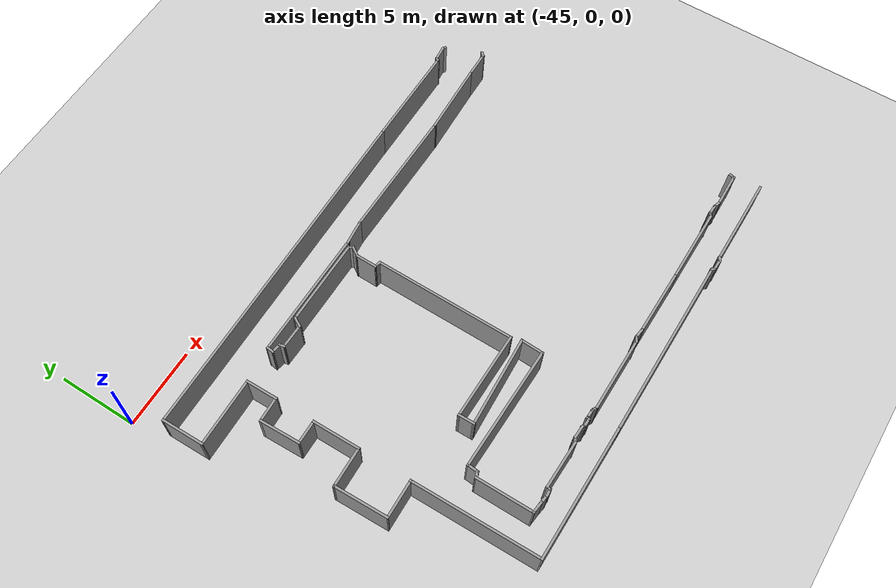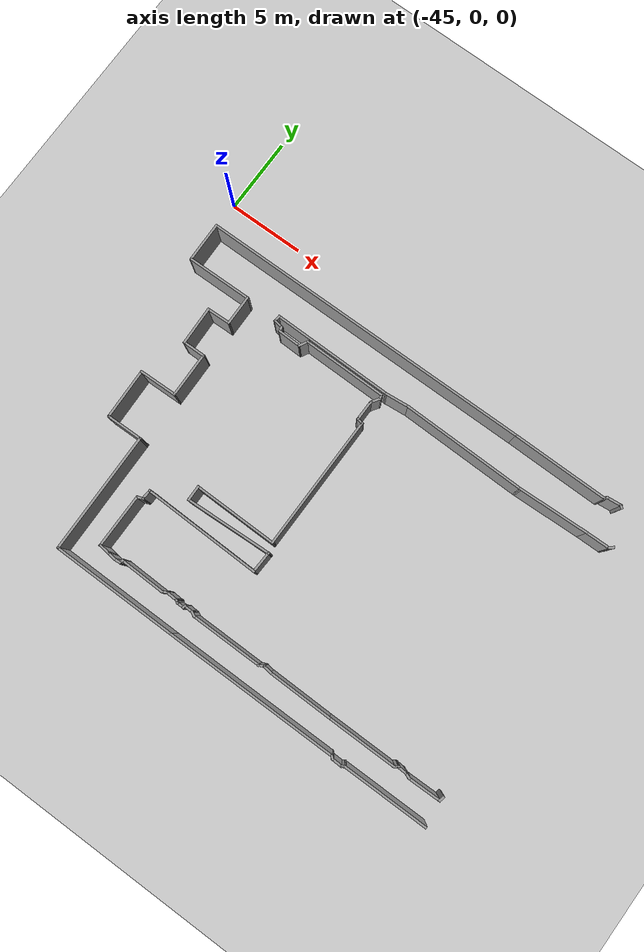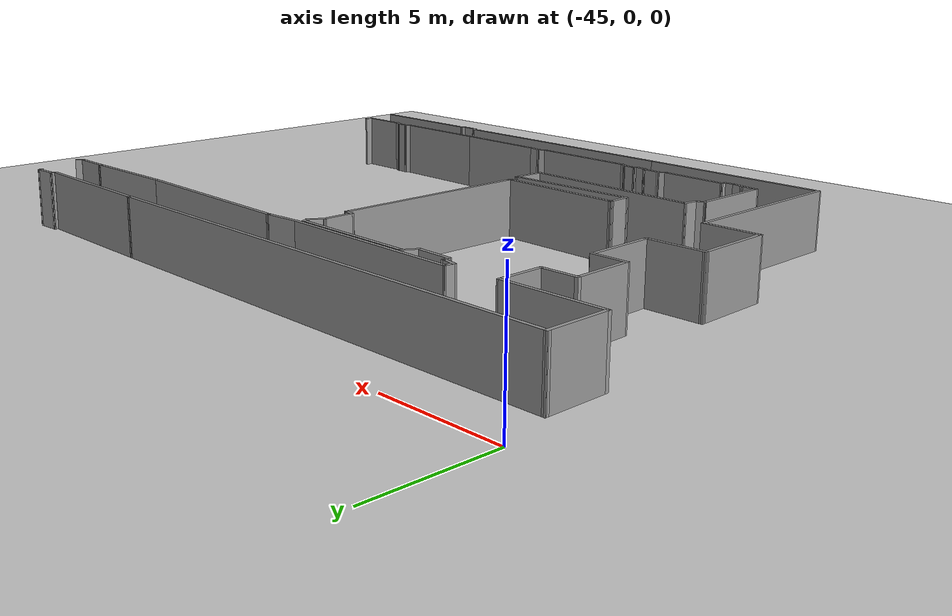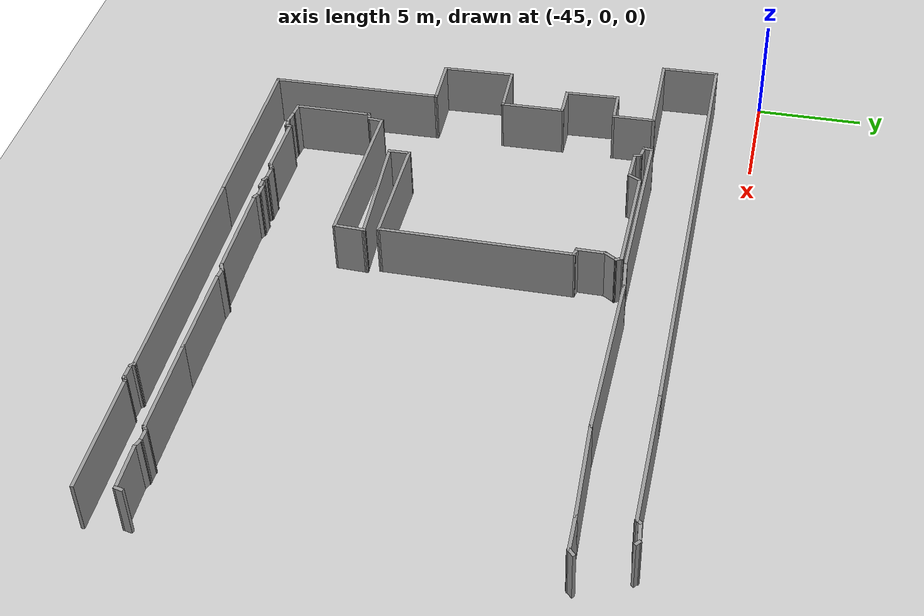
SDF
<sdf version="1.7">
 <world name="default">
  <model name="ground_plane">
   <static>1</static>
   <link name="link">
    <collision name="collision">
     <geometry><plane><normal>0 0 1</normal><size>100 100</size></plane></geometry>
     <surface>
      <contact><collide_bitmask>65535</collide_bitmask></contact>
      <friction><ode><mu>100</mu><mu2>50</mu2></ode></friction>
     </surface>
    </collision>
    <visual name="visual">
     <cast_shadows>0</cast_shadows>
     <geometry><plane><normal>0 0 1</normal><size>100 100</size></plane></geometry>
     <material>
      <script><uri>file://media/materials/scripts/gazebo.material</uri><name>Gazebo/Grey</name></script>
     </material>
    </visual>
   </link>
  </model>
  <model name="EnvDC_1stfloor">
   <pose>-14.254 -7.77363 0 0 0 -0.048671</pose>
   <link name="Wall_104">
    <collision name="Wall_104_Collision">
     <geometry><box><size>0.420217 0.15 2.5</size></box></geometry>
     <pose>0 0 1.25 0 -0 0</pose>
    </collision>
    <visual name="Wall_104_Visual">
     <pose>0 0 1.25 0 -0 0</pose>
     <geometry><box><size>0.420217 0.15 2.5</size></box></geometry>
     <material>
      <script><uri>file://media/materials/scripts/gazebo.material</uri><name>Gazebo/Grey</name></script>
      <ambient>1 1 1 1</ambient>
     </material>
     <meta><layer>0</layer></meta>
    </visual>
    <pose>1.00864 -13.7694 0 0 -0 -1.74203</pose>
   </link>
   <link name="Wall_105">
    <collision name="Wall_105_Collision">
     <geometry><box><size>2.22808 0.15 2.5</size></box></geometry>
     <pose>0 0 1.25 0 -0 0</pose>
    </collision>
    <visual name="Wall_105_Visual">
     <pose>0 0 1.25 0 -0 0</pose>
     <geometry><box><size>2.22808 0.15 2.5</size></box></geometry>
     <material>
      <script><uri>file://media/materials/scripts/gazebo.material</uri><name>Gazebo/Grey</name></script>
      <ambient>1 1 1 1</ambient>
     </material>
     <meta><layer>0</layer></meta>
    </visual>
    <pose>-0.051496 -13.9658 0 0 -0 -3.08063</pose>
   </link>
   <link name="Wall_111">
    <collision name="Wall_111_Collision">
     <geometry><box><size>0.496157 0.15 2.5</size></box></geometry>
     <pose>0 0 1.25 0 -0 0</pose>
    </collision>
    <visual name="Wall_111_Visual">
     <pose>0 0 1.25 0 -0 0</pose>
     <geometry><box><size>0.496157 0.15 2.5</size></box></geometry>
     <material>
      <script><uri>file://media/materials/scripts/gazebo.material</uri><name>Gazebo/Grey</name></script>
      <ambient>1 1 1 1</ambient>
     </material>
     <meta><layer>0</layer></meta>
    </visual>
    <pose>-1.25341 -13.9763 0 0 -0 2.8312</pose>
   </link>
   <link name="Wall_112">
    <collision name="Wall_112_Collision">
     <geometry><box><size>0.682216 0.15 2.5</size></box></geometry>
     <pose>0 0 1.25 0 -0 0</pose>
    </collision>
    <visual name="Wall_112_Visual">
     <pose>0 0 1.25 0 -0 0</pose>
     <geometry><box><size>0.682216 0.15 2.5</size></box></geometry>
     <material>
      <script><uri>file://media/materials/scripts/gazebo.material</uri><name>Gazebo/Grey</name></script>
      <ambient>1 1 1 1</ambient>
     </material>
     <meta><layer>0</layer></meta>
    </visual>
    <pose>-1.68433 -13.9234 0 0 -0 3.14159</pose>
   </link>
   <link name="Wall_113">
    <collision name="Wall_113_Collision">
     <geometry><box><size>0.403477 0.15 2.5</size></box></geometry>
     <pose>0 0 1.25 0 -0 0</pose>
    </collision>
    <visual name="Wall_113_Visual">
     <pose>0 0 1.25 0 -0 0</pose>
     <geometry><box><size>0.403477 0.15 2.5</size></box></geometry>
     <material>
      <script><uri>file://media/materials/scripts/gazebo.material</uri><name>Gazebo/Grey</name></script>
      <ambient>1 1 1 1</ambient>
     </material>
     <meta><layer>0</layer></meta>
    </visual>
    <pose>-2.05615 -13.9933 0 0 -0 -2.55732</pose>
   </link>
   <link name="Wall_114">
    <collision name="Wall_114_Collision">
     <geometry><box><size>4.64567 0.15 2.5</size></box></geometry>
     <pose>0 0 1.25 0 -0 0</pose>
    </collision>
    <visual name="Wall_114_Visual">
     <pose>0 0 1.25 0 -0 0</pose>
     <geometry><box><size>4.64567 0.15 2.5</size></box></geometry>
     <material>
      <script><uri>file://media/materials/scripts/gazebo.material</uri><name>Gazebo/Grey</name></script>
      <ambient>1 1 1 1</ambient>
     </material>
     <meta><layer>0</layer></meta>
    </visual>
    <pose>-4.40738 -14.1701 0 0 -0 -3.09617</pose>
   </link>
   <link name="Wall_116">
    <collision name="Wall_116_Collision">
     <geometry><box><size>4.34413 0.15 2.5</size></box></geometry>
     <pose>0 0 1.25 0 -0 0</pose>
    </collision>
    <visual name="Wall_116_Visual">
     <pose>0 0 1.25 0 -0 0</pose>
     <geometry><box><size>4.34413 0.15 2.5</size></box></geometry>
     <material>
      <script><uri>file://media/materials/scripts/gazebo.material</uri><name>Gazebo/Grey</name></script>
      <ambient>1 1 1 1</ambient>
     </material>
     <meta><layer>0</layer></meta>
    </visual>
    <pose>-8.74854 -14.3495 0 0 -0 -3.10472</pose>
   </link>
   <link name="Wall_117">
    <collision name="Wall_117_Collision">
     <geometry><box><size>0.657664 0.15 2.5</size></box></geometry>
     <pose>0 0 1.25 0 -0 0</pose>
    </collision>
    <visual name="Wall_117_Visual">
     <pose>0 0 1.25 0 -0 0</pose>
     <geometry><box><size>0.657664 0.15 2.5</size></box></geometry>
     <material>
      <script><uri>file://media/materials/scripts/gazebo.material</uri><name>Gazebo/Grey</name></script>
      <ambient>1 1 1 1</ambient>
     </material>
     <meta><layer>0</layer></meta>
    </visual>
    <pose>-11.0971 -14.4057 0 0 -0 3.05845</pose>
   </link>
   <link name="Wall_118">
    <collision name="Wall_118_Collision">
     <geometry><box><size>0.478084 0.15 2.5</size></box></geometry>
     <pose>0 0 1.25 0 -0 0</pose>
    </collision>
    <visual name="Wall_118_Visual">
     <pose>0 0 1.25 0 -0 0</pose>
     <geometry><box><size>0.478084 0.15 2.5</size></box></geometry>
     <material>
      <script><uri>file://media/materials/scripts/gazebo.material</uri><name>Gazebo/Grey</name></script>
      <ambient>1 1 1 1</ambient>
     </material>
     <meta><layer>0</layer></meta>
    </visual>
    <pose>-11.4976 -14.4563 0 0 -0 -2.68944</pose>
   </link>
   <link name="Wall_119">
    <collision name="Wall_119_Collision">
     <geometry><box><size>4.75823 0.15 2.5</size></box></geometry>
     <pose>0 0 1.25 0 -0 0</pose>
    </collision>
    <visual name="Wall_119_Visual">
     <pose>0 0 1.25 0 -0 0</pose>
     <geometry><box><size>4.75823 0.15 2.5</size></box></geometry>
     <material>
      <script><uri>file://media/materials/scripts/gazebo.material</uri><name>Gazebo/Grey</name></script>
      <ambient>1 1 1 1</ambient>
     </material>
     <meta><layer>0</layer></meta>
    </visual>
    <pose>-13.9471 -14.6292 0 0 -0 -3.09767</pose>
   </link>
   <link name="Wall_121">
    <collision name="Wall_121_Collision">
     <geometry><box><size>0.441234 0.15 2.5</size></box></geometry>
     <pose>0 0 1.25 0 -0 0</pose>
    </collision>
    <visual name="Wall_121_Visual">
     <pose>0 0 1.25 0 -0 0</pose>
     <geometry><box><size>0.441234 0.15 2.5</size></box></geometry>
     <material>
      <script><uri>file://media/materials/scripts/gazebo.material</uri><name>Gazebo/Grey</name></script>
      <ambient>1 1 1 1</ambient>
     </material>
     <meta><layer>0</layer></meta>
    </visual>
    <pose>-16.3839 -14.6755 0 0 -0 2.75571</pose>
   </link>
   <link name="Wall_122">
    <collision name="Wall_122_Collision">
     <geometry><box><size>0.664342 0.15 2.5</size></box></geometry>
     <pose>0 0 1.25 0 -0 0</pose>
    </collision>
    <visual name="Wall_122_Visual">
     <pose>0 0 1.25 0 -0 0</pose>
     <geometry><box><size>0.664342 0.15 2.5</size></box></geometry>
     <material>
      <script><uri>file://media/materials/scripts/gazebo.material</uri><name>Gazebo/Grey</name></script>
      <ambient>1 1 1 1</ambient>
     </material>
     <meta><layer>0</layer></meta>
    </visual>
    <pose>-16.776 -14.6207 0 0 -0 3.14159</pose>
   </link>
   <link name="Wall_123">
    <collision name="Wall_123_Collision">
     <geometry><box><size>0.272769 0.15 2.5</size></box></geometry>
     <pose>0 0 1.25 0 -0 0</pose>
    </collision>
    <visual name="Wall_123_Visual">
     <pose>0 0 1.25 0 -0 0</pose>
     <geometry><box><size>0.272769 0.15 2.5</size></box></geometry>
     <material>
      <script><uri>file://media/materials/scripts/gazebo.material</uri><name>Gazebo/Grey</name></script>
      <ambient>1 1 1 1</ambient>
     </material>
     <meta><layer>0</layer></meta>
    </visual>
    <pose>-17.05 -14.6798 0 0 -0 -1.8491</pose>
   </link>
   <link name="Wall_124">
    <collision name="Wall_124_Collision">
     <geometry><box><size>0.58878 0.15 2.5</size></box></geometry>
     <pose>0 0 1.25 0 -0 0</pose>
    </collision>
    <visual name="Wall_124_Visual">
     <pose>0 0 1.25 0 -0 0</pose>
     <geometry><box><size>0.58878 0.15 2.5</size></box></geometry>
     <material>
      <script><uri>file://media/materials/scripts/gazebo.material</uri><name>Gazebo/Grey</name></script>
      <ambient>1 1 1 1</ambient>
     </material>
     <meta><layer>0</layer></meta>
    </visual>
    <pose>-17.2861 -14.743 0 0 -0 -3.12236</pose>
   </link>
   <link name="Wall_125">
    <collision name="Wall_125_Collision">
     <geometry><box><size>0.309092 0.15 2.5</size></box></geometry>
     <pose>0 0 1.25 0 -0 0</pose>
    </collision>
    <visual name="Wall_125_Visual">
     <pose>0 0 1.25 0 -0 0</pose>
     <geometry><box><size>0.309092 0.15 2.5</size></box></geometry>
     <material>
      <script><uri>file://media/materials/scripts/gazebo.material</uri><name>Gazebo/Grey</name></script>
      <ambient>1 1 1 1</ambient>
     </material>
     <meta><layer>0</layer></meta>
    </visual>
    <pose>-17.5728 -14.7051 0 0 -0 2.58299</pose>
   </link>
   <link name="Wall_126">
    <collision name="Wall_126_Collision">
     <geometry><box><size>0.875138 0.15 2.5</size></box></geometry>
     <pose>0 0 1.25 0 -0 0</pose>
    </collision>
    <visual name="Wall_126_Visual">
     <pose>0 0 1.25 0 -0 0</pose>
     <geometry><box><size>0.875138 0.15 2.5</size></box></geometry>
     <material>
      <script><uri>file://media/materials/scripts/gazebo.material</uri><name>Gazebo/Grey</name></script>
      <ambient>1 1 1 1</ambient>
     </material>
     <meta><layer>0</layer></meta>
    </visual>
    <pose>-18.0028 -14.6629 0 0 -0 3.14159</pose>
   </link>
   <link name="Wall_127">
    <collision name="Wall_127_Collision">
     <geometry><box><size>0.449419 0.15 2.5</size></box></geometry>
     <pose>0 0 1.25 0 -0 0</pose>
    </collision>
    <visual name="Wall_127_Visual">
     <pose>0 0 1.25 0 -0 0</pose>
     <geometry><box><size>0.449419 0.15 2.5</size></box></geometry>
     <material>
      <script><uri>file://media/materials/scripts/gazebo.material</uri><name>Gazebo/Grey</name></script>
      <ambient>1 1 1 1</ambient>
     </material>
     <meta><layer>0</layer></meta>
    </visual>
    <pose>-18.4919 -14.743 0 0 -0 -2.57702</pose>
   </link>
   <link name="Wall_128">
    <collision name="Wall_128_Collision">
     <geometry><box><size>3.06046 0.15 2.5</size></box></geometry>
     <pose>0 0 1.25 0 -0 0</pose>
    </collision>
    <visual name="Wall_128_Visual">
     <pose>0 0 1.25 0 -0 0</pose>
     <geometry><box><size>3.06046 0.15 2.5</size></box></geometry>
     <material>
      <script><uri>file://media/materials/scripts/gazebo.material</uri><name>Gazebo/Grey</name></script>
      <ambient>1 1 1 1</ambient>
     </material>
     <meta><layer>0</layer></meta>
    </visual>
    <pose>-20.0728 -14.8568 0 0 -0 -3.11841</pose>
   </link>
   <link name="Wall_129">
    <collision name="Wall_129_Collision">
     <geometry><box><size>0.342276 0.15 2.5</size></box></geometry>
     <pose>0 0 1.25 0 -0 0</pose>
    </collision>
    <visual name="Wall_129_Visual">
     <pose>0 0 1.25 0 -0 0</pose>
     <geometry><box><size>0.342276 0.15 2.5</size></box></geometry>
     <material>
      <script><uri>file://media/materials/scripts/gazebo.material</uri><name>Gazebo/Grey</name></script>
      <ambient>1 1 1 1</ambient>
     </material>
     <meta><layer>0</layer></meta>
    </visual>
    <pose>-21.5526 -14.9833 0 0 -0 -1.83705</pose>
   </link>
   <link name="Wall_130">
    <collision name="Wall_130_Collision">
     <geometry><box><size>0.532791 0.15 2.5</size></box></geometry>
     <pose>0 0 1.25 0 -0 0</pose>
    </collision>
    <visual name="Wall_130_Visual">
     <pose>0 0 1.25 0 -0 0</pose>
     <geometry><box><size>0.532791 0.15 2.5</size></box></geometry>
     <material>
      <script><uri>file://media/materials/scripts/gazebo.material</uri><name>Gazebo/Grey</name></script>
      <ambient>1 1 1 1</ambient>
     </material>
     <meta><layer>0</layer></meta>
    </visual>
    <pose>-21.7676 -15.1014 0 0 -0 -3.00904</pose>
   </link>
   <link name="Wall_131">
    <collision name="Wall_131_Collision">
     <geometry><box><size>0.634225 0.15 2.5</size></box></geometry>
     <pose>0 0 1.25 0 -0 0</pose>
    </collision>
    <visual name="Wall_131_Visual">
     <pose>0 0 1.25 0 -0 0</pose>
     <geometry><box><size>0.634225 0.15 2.5</size></box></geometry>
     <material>
      <script><uri>file://media/materials/scripts/gazebo.material</uri><name>Gazebo/Grey</name></script>
      <ambient>1 1 1 1</ambient>
     </material>
     <meta><layer>0</layer></meta>
    </visual>
    <pose>-22.1977 -15.1014 0 0 -0 3.03672</pose>
   </link>
   <link name="Wall_132">
    <collision name="Wall_132_Collision">
     <geometry><box><size>0.817448 0.15 2.5</size></box></geometry>
     <pose>0 0 1.25 0 -0 0</pose>
    </collision>
    <visual name="Wall_132_Visual">
     <pose>0 0 1.25 0 -0 0</pose>
     <geometry><box><size>0.817448 0.15 2.5</size></box></geometry>
     <material>
      <script><uri>file://media/materials/scripts/gazebo.material</uri><name>Gazebo/Grey</name></script>
      <ambient>1 1 1 1</ambient>
     </material>
     <meta><layer>0</layer></meta>
    </visual>
    <pose>-22.771 -15.055 0 0 -0 3.07839</pose>
   </link>
   <link name="Wall_133">
    <collision name="Wall_133_Collision">
     <geometry><box><size>3.62843 0.15 2.5</size></box></geometry>
     <pose>0 0 1.25 0 -0 0</pose>
    </collision>
    <visual name="Wall_133_Visual">
     <pose>0 0 1.25 0 -0 0</pose>
     <geometry><box><size>3.62843 0.15 2.5</size></box></geometry>
     <material>
      <script><uri>file://media/materials/scripts/gazebo.material</uri><name>Gazebo/Grey</name></script>
      <ambient>1 1 1 1</ambient>
     </material>
     <meta><layer>0</layer></meta>
    </visual>
    <pose>-23.1926 -13.2969 0 0 -0 1.62172</pose>
   </link>
   <link name="Wall_138">
    <collision name="Wall_138_Collision">
     <geometry><box><size>0.501012 0.15 2.5</size></box></geometry>
     <pose>0 0 1.25 0 -0 0</pose>
    </collision>
    <visual name="Wall_138_Visual">
     <pose>0 0 1.25 0 -0 0</pose>
     <geometry><box><size>0.501012 0.15 2.5</size></box></geometry>
     <material>
      <script><uri>file://media/materials/scripts/gazebo.material</uri><name>Gazebo/Grey</name></script>
      <ambient>1 1 1 1</ambient>
     </material>
     <meta><layer>0</layer></meta>
    </visual>
    <pose>-23.1209 -11.4883 0 0 -0 0.420663</pose>
   </link>
   <link name="Wall_139">
    <collision name="Wall_139_Collision">
     <geometry><box><size>0.748898 0.15 2.5</size></box></geometry>
     <pose>0 0 1.25 0 -0 0</pose>
    </collision>
    <visual name="Wall_139_Visual">
     <pose>0 0 1.25 0 -0 0</pose>
     <geometry><box><size>0.748898 0.15 2.5</size></box></geometry>
     <material>
      <script><uri>file://media/materials/scripts/gazebo.material</uri><name>Gazebo/Grey</name></script>
      <ambient>1 1 1 1</ambient>
     </material>
     <meta><layer>0</layer></meta>
    </visual>
    <pose>-22.9523 -11.1173 0 0 -0 1.54263</pose>
   </link>
   <link name="Wall_140">
    <collision name="Wall_140_Collision">
     <geometry><box><size>7.85115 0.15 2.5</size></box></geometry>
     <pose>0 0 1.25 0 -0 0</pose>
    </collision>
    <visual name="Wall_140_Visual">
     <pose>0 0 1.25 0 -0 0</pose>
     <geometry><box><size>7.85115 0.15 2.5</size></box></geometry>
     <material>
      <script><uri>file://media/materials/scripts/gazebo.material</uri><name>Gazebo/Grey</name></script>
      <ambient>1 1 1 1</ambient>
     </material>
     <meta><layer>0</layer></meta>
    </visual>
    <pose>-19.0947 -10.7126 0 0 -0 0.027375</pose>
   </link>
   <link name="Wall_141">
    <collision name="Wall_141_Collision">
     <geometry><box><size>1.49069 0.15 2.5</size></box></geometry>
     <pose>0 0 1.25 0 -0 0</pose>
    </collision>
    <visual name="Wall_141_Visual">
     <pose>0 0 1.25 0 -0 0</pose>
     <geometry><box><size>1.49069 0.15 2.5</size></box></geometry>
     <material>
      <script><uri>file://media/materials/scripts/gazebo.material</uri><name>Gazebo/Grey</name></script>
      <ambient>1 1 1 1</ambient>
     </material>
     <meta><layer>0</layer></meta>
    </visual>
    <pose>-15.2498 -9.93685 0 0 -0 1.57709</pose>
   </link>
   <link name="Wall_142">
    <collision name="Wall_142_Collision">
     <geometry><box><size>5.7647 0.15 2.5</size></box></geometry>
     <pose>0 0 1.25 0 -0 0</pose>
    </collision>
    <visual name="Wall_142_Visual">
     <pose>0 0 1.25 0 -0 0</pose>
     <geometry><box><size>5.7647 0.15 2.5</size></box></geometry>
     <material>
      <script><uri>file://media/materials/scripts/gazebo.material</uri><name>Gazebo/Grey</name></script>
      <ambient>1 1 1 1</ambient>
     </material>
     <meta><layer>0</layer></meta>
    </visual>
    <pose>-18.0492 -9.52791 0 0 -0 -3.04835</pose>
   </link>
   <link name="Wall_143">
    <collision name="Wall_143_Collision">
     <geometry><box><size>1.07995 0.15 2.5</size></box></geometry>
     <pose>0 0 1.25 0 -0 0</pose>
    </collision>
    <visual name="Wall_143_Visual">
     <pose>0 0 1.25 0 -0 0</pose>
     <geometry><box><size>1.07995 0.15 2.5</size></box></geometry>
     <material>
      <script><uri>file://media/materials/scripts/gazebo.material</uri><name>Gazebo/Grey</name></script>
      <ambient>1 1 1 1</ambient>
     </material>
     <meta><layer>0</layer></meta>
    </visual>
    <pose>-20.8739 -9.32554 0 0 -0 1.63435</pose>
   </link>
   <link name="Wall_144">
    <collision name="Wall_144_Collision">
     <geometry><box><size>5.5923 0.15 2.5</size></box></geometry>
     <pose>0 0 1.25 0 -0 0</pose>
    </collision>
    <visual name="Wall_144_Visual">
     <pose>0 0 1.25 0 -0 0</pose>
     <geometry><box><size>5.5923 0.15 2.5</size></box></geometry>
     <material>
      <script><uri>file://media/materials/scripts/gazebo.material</uri><name>Gazebo/Grey</name></script>
      <ambient>1 1 1 1</ambient>
     </material>
     <meta><layer>0</layer></meta>
    </visual>
    <pose>-18.1841 -8.76061 0 0 -0 0.037192</pose>
   </link>
   <link name="Wall_146">
    <collision name="Wall_146_Collision">
     <geometry><box><size>8.90349 0.15 2.5</size></box></geometry>
     <pose>0 0 1.25 0 -0 0</pose>
    </collision>
    <visual name="Wall_146_Visual">
     <pose>0 0 1.25 0 -0 0</pose>
     <geometry><box><size>8.90349 0.15 2.5</size></box></geometry>
     <material>
      <script><uri>file://media/materials/scripts/gazebo.material</uri><name>Gazebo/Grey</name></script>
      <ambient>1 1 1 1</ambient>
     </material>
     <meta><layer>0</layer></meta>
    </visual>
    <pose>-15.6523 -4.2867 0 0 -0 1.61364</pose>
   </link>
   <link name="Wall_147">
    <collision name="Wall_147_Collision">
     <geometry><box><size>0.505025 0.15 2.5</size></box></geometry>
     <pose>0 0 1.25 0 -0 0</pose>
    </collision>
    <visual name="Wall_147_Visual">
     <pose>0 0 1.25 0 -0 0</pose>
     <geometry><box><size>0.505025 0.15 2.5</size></box></geometry>
     <material>
      <script><uri>file://media/materials/scripts/gazebo.material</uri><name>Gazebo/Grey</name></script>
      <ambient>1 1 1 1</ambient>
     </material>
     <meta><layer>0</layer></meta>
    </visual>
    <pose>-16.015 0.114301 0 0 -0 2.98168</pose>
   </link>
   <link name="Wall_148">
    <collision name="Wall_148_Collision">
     <geometry><box><size>1.40581 0.15 2.5</size></box></geometry>
     <pose>0 0 1.25 0 -0 0</pose>
    </collision>
    <visual name="Wall_148_Visual">
     <pose>0 0 1.25 0 -0 0</pose>
     <geometry><box><size>1.40581 0.15 2.5</size></box></geometry>
     <material>
      <script><uri>file://media/materials/scripts/gazebo.material</uri><name>Gazebo/Grey</name></script>
      <ambient>1 1 1 1</ambient>
     </material>
     <meta><layer>0</layer></meta>
    </visual>
    <pose>-16.2128 0.770066 0 0 -0 1.60682</pose>
   </link>
   <link name="Wall_149">
    <collision name="Wall_149_Collision">
     <geometry><box><size>0.753061 0.15 2.5</size></box></geometry>
     <pose>0 0 1.25 0 -0 0</pose>
    </collision>
    <visual name="Wall_149_Visual">
     <pose>0 0 1.25 0 -0 0</pose>
     <geometry><box><size>0.753061 0.15 2.5</size></box></geometry>
     <material>
      <script><uri>file://media/materials/scripts/gazebo.material</uri><name>Gazebo/Grey</name></script>
      <ambient>1 1 1 1</ambient>
     </material>
     <meta><layer>0</layer></meta>
    </visual>
    <pose>-16.0828 1.65761 0 0 -0 1.04002</pose>
   </link>
   <link name="Wall_150">
    <collision name="Wall_150_Collision">
     <geometry><box><size>0.402816 0.15 2.5</size></box></geometry>
     <pose>0 0 1.25 0 -0 0</pose>
    </collision>
    <visual name="Wall_150_Visual">
     <pose>0 0 1.25 0 -0 0</pose>
     <geometry><box><size>0.402816 0.15 2.5</size></box></geometry>
     <material>
      <script><uri>file://media/materials/scripts/gazebo.material</uri><name>Gazebo/Grey</name></script>
      <ambient>1 1 1 1</ambient>
     </material>
     <meta><layer>0</layer></meta>
    </visual>
    <pose>-15.9867 2.03072 0 0 -0 2.03444</pose>
   </link>
   <link name="Wall_151">
    <collision name="Wall_151_Collision">
     <geometry><box><size>5.54784 0.15 2.5</size></box></geometry>
     <pose>0 0 1.25 0 -0 0</pose>
    </collision>
    <visual name="Wall_151_Visual">
     <pose>0 0 1.25 0 -0 0</pose>
     <geometry><box><size>5.54784 0.15 2.5</size></box></geometry>
     <material>
      <script><uri>file://media/materials/scripts/gazebo.material</uri><name>Gazebo/Grey</name></script>
      <ambient>1 1 1 1</ambient>
     </material>
     <meta><layer>0</layer></meta>
    </visual>
    <pose>-18.7398 2.03072 0 0 -0 -3.09969</pose>
   </link>
   <link name="Wall_152">
    <collision name="Wall_152_Collision">
     <geometry><box><size>0.731478 0.15 2.5</size></box></geometry>
     <pose>0 0 1.25 0 -0 0</pose>
    </collision>
    <visual name="Wall_152_Visual">
     <pose>0 0 1.25 0 -0 0</pose>
     <geometry><box><size>0.731478 0.15 2.5</size></box></geometry>
     <material>
      <script><uri>file://media/materials/scripts/gazebo.material</uri><name>Gazebo/Grey</name></script>
      <ambient>1 1 1 1</ambient>
     </material>
     <meta><layer>0</layer></meta>
    </visual>
    <pose>-21.5664 1.65761 0 0 -0 -2.03444</pose>
   </link>
   <link name="Wall_153">
    <collision name="Wall_153_Collision">
     <geometry><box><size>1.60869 0.15 2.5</size></box></geometry>
     <pose>0 0 1.25 0 -0 0</pose>
    </collision>
    <visual name="Wall_153_Visual">
     <pose>0 0 1.25 0 -0 0</pose>
     <geometry><box><size>1.60869 0.15 2.5</size></box></geometry>
     <material>
      <script><uri>file://media/materials/scripts/gazebo.material</uri><name>Gazebo/Grey</name></script>
      <ambient>1 1 1 1</ambient>
     </material>
     <meta><layer>0</layer></meta>
    </visual>
    <pose>-22.4256 1.38061 0 0 -0 -3.11834</pose>
   </link>
   <link name="Wall_154">
    <collision name="Wall_154_Collision">
     <geometry><box><size>0.411026 0.15 2.5</size></box></geometry>
     <pose>0 0 1.25 0 -0 0</pose>
    </collision>
    <visual name="Wall_154_Visual">
     <pose>0 0 1.25 0 -0 0</pose>
     <geometry><box><size>0.411026 0.15 2.5</size></box></geometry>
     <material>
      <script><uri>file://media/materials/scripts/gazebo.material</uri><name>Gazebo/Grey</name></script>
      <ambient>1 1 1 1</ambient>
     </material>
     <meta><layer>0</layer></meta>
    </visual>
    <pose>-23.1945 1.48802 0 0 -0 1.87885</pose>
   </link>
   <link name="Wall_155">
    <collision name="Wall_155_Collision">
     <geometry><box><size>0.696925 0.15 2.5</size></box></geometry>
     <pose>0 0 1.25 0 -0 0</pose>
    </collision>
    <visual name="Wall_155_Visual">
     <pose>0 0 1.25 0 -0 0</pose>
     <geometry><box><size>0.696925 0.15 2.5</size></box></geometry>
     <material>
      <script><uri>file://media/materials/scripts/gazebo.material</uri><name>Gazebo/Grey</name></script>
      <ambient>1 1 1 1</ambient>
     </material>
     <meta><layer>0</layer></meta>
    </visual>
    <pose>-23.5054 1.6463 0 0 -0 3.01724</pose>
   </link>
   <link name="Wall_156">
    <collision name="Wall_156_Collision">
     <geometry><box><size>0.512507 0.15 2.5</size></box></geometry>
     <pose>0 0 1.25 0 -0 0</pose>
    </collision>
    <visual name="Wall_156_Visual">
     <pose>0 0 1.25 0 -0 0</pose>
     <geometry><box><size>0.512507 0.15 2.5</size></box></geometry>
     <material>
      <script><uri>file://media/materials/scripts/gazebo.material</uri><name>Gazebo/Grey</name></script>
      <ambient>1 1 1 1</ambient>
     </material>
     <meta><layer>0</layer></meta>
    </visual>
    <pose>-23.7654 1.86112 0 0 -0 1.50838</pose>
   </link>
   <link name="Wall_157">
    <collision name="Wall_157_Collision">
     <geometry><box><size>8.07119 0.15 2.5</size></box></geometry>
     <pose>0 0 1.25 0 -0 0</pose>
    </collision>
    <visual name="Wall_157_Visual">
     <pose>0 0 1.25 0 -0 0</pose>
     <geometry><box><size>8.07119 0.15 2.5</size></box></geometry>
     <material>
      <script><uri>file://media/materials/scripts/gazebo.material</uri><name>Gazebo/Grey</name></script>
      <ambient>1 1 1 1</ambient>
     </material>
     <meta><layer>0</layer></meta>
    </visual>
    <pose>-19.7969 2.20596 0 0 -0 0.041405</pose>
   </link>
   <link name="Wall_158">
    <collision name="Wall_158_Collision">
     <geometry><box><size>1.64662 0.15 2.5</size></box></geometry>
     <pose>0 0 1.25 0 -0 0</pose>
    </collision>
    <visual name="Wall_158_Visual">
     <pose>0 0 1.25 0 -0 0</pose>
     <geometry><box><size>1.64662 0.15 2.5</size></box></geometry>
     <material>
      <script><uri>file://media/materials/scripts/gazebo.material</uri><name>Gazebo/Grey</name></script>
      <ambient>1 1 1 1</ambient>
     </material>
     <meta><layer>0</layer></meta>
    </visual>
    <pose>-15.0992 2.47732 0 0 -0 0.144034</pose>
   </link>
   <link name="Wall_159">
    <collision name="Wall_159_Collision">
     <geometry><box><size>8.29544 0.15 2.5</size></box></geometry>
     <pose>0 0 1.25 0 -0 0</pose>
    </collision>
    <visual name="Wall_159_Visual">
     <pose>0 0 1.25 0 -0 0</pose>
     <geometry><box><size>8.29544 0.15 2.5</size></box></geometry>
     <material>
      <script><uri>file://media/materials/scripts/gazebo.material</uri><name>Gazebo/Grey</name></script>
      <ambient>1 1 1 1</ambient>
     </material>
     <meta><layer>0</layer></meta>
    </visual>
    <pose>-10.2883 2.72606 0 0 -0 0.034708</pose>
   </link>
   <link name="Wall_160">
    <collision name="Wall_160_Collision">
     <geometry><box><size>4.67756 0.15 2.5</size></box></geometry>
     <pose>0 0 1.25 0 -0 0</pose>
    </collision>
    <visual name="Wall_160_Visual">
     <pose>0 0 1.25 0 -0 0</pose>
     <geometry><box><size>4.67756 0.15 2.5</size></box></geometry>
     <material>
      <script><uri>file://media/materials/scripts/gazebo.material</uri><name>Gazebo/Grey</name></script>
      <ambient>1 1 1 1</ambient>
     </material>
     <meta><layer>0</layer></meta>
    </visual>
    <pose>-3.96247 3.05959 0 0 -0 0.085008</pose>
   </link>
   <link name="Wall_161">
    <collision name="Wall_161_Collision">
     <geometry><box><size>1.72564 0.15 2.5</size></box></geometry>
     <pose>0 0 1.25 0 -0 0</pose>
    </collision>
    <visual name="Wall_161_Visual">
     <pose>0 0 1.25 0 -0 0</pose>
     <geometry><box><size>1.72564 0.15 2.5</size></box></geometry>
     <material>
      <script><uri>file://media/materials/scripts/gazebo.material</uri><name>Gazebo/Grey</name></script>
      <ambient>1 1 1 1</ambient>
     </material>
     <meta><layer>0</layer></meta>
    </visual>
    <pose>-0.921076 3.30268 0 0 -0 0.064658</pose>
   </link>
   <link name="Wall_162">
    <collision name="Wall_162_Collision">
     <geometry><box><size>0.413948 0.15 2.5</size></box></geometry>
     <pose>0 0 1.25 0 -0 0</pose>
    </collision>
    <visual name="Wall_162_Visual">
     <pose>0 0 1.25 0 -0 0</pose>
     <geometry><box><size>0.413948 0.15 2.5</size></box></geometry>
     <material>
      <script><uri>file://media/materials/scripts/gazebo.material</uri><name>Gazebo/Grey</name></script>
      <ambient>1 1 1 1</ambient>
     </material>
     <meta><layer>0</layer></meta>
    </visual>
    <pose>-0.044838 3.44966 0 0 -0 0.815692</pose>
   </link>
   <link name="Wall_50">
    <collision name="Wall_50_Collision">
     <geometry><box><size>5.70656 0.15 2.5</size></box></geometry>
     <pose>0 0 1.25 0 -0 0</pose>
    </collision>
    <visual name="Wall_50_Visual">
     <pose>0 0 1.25 0 -0 0</pose>
     <geometry><box><size>5.70656 0.15 2.5</size></box></geometry>
     <material>
      <script><uri>file://media/materials/scripts/gazebo.material</uri><name>Gazebo/Grey</name></script>
      <ambient>1 1 1 1</ambient>
     </material>
     <meta><layer>0</layer></meta>
    </visual>
    <pose>-1.51341 -15.6608 0 0 -0 -3.09298</pose>
   </link>
   <link name="Wall_51">
    <collision name="Wall_51_Collision">
     <geometry><box><size>0.352485 0.15 2.5</size></box></geometry>
     <pose>0 0 1.25 0 -0 0</pose>
    </collision>
    <visual name="Wall_51_Visual">
     <pose>0 0 1.25 0 -0 0</pose>
     <geometry><box><size>0.352485 0.15 2.5</size></box></geometry>
     <material>
      <script><uri>file://media/materials/scripts/gazebo.material</uri><name>Gazebo/Grey</name></script>
      <ambient>1 1 1 1</ambient>
     </material>
     <meta><layer>0</layer></meta>
    </visual>
    <pose>-4.37341 -15.8508 0 0 -0 -2.56729</pose>
   </link>
   <link name="Wall_52">
    <collision name="Wall_52_Collision">
     <geometry><box><size>0.790078 0.15 2.5</size></box></geometry>
     <pose>0 0 1.25 0 -0 0</pose>
    </collision>
    <visual name="Wall_52_Visual">
     <pose>0 0 1.25 0 -0 0</pose>
     <geometry><box><size>0.790078 0.15 2.5</size></box></geometry>
     <material>
      <script><uri>file://media/materials/scripts/gazebo.material</uri><name>Gazebo/Grey</name></script>
      <ambient>1 1 1 1</ambient>
     </material>
     <meta><layer>0</layer></meta>
    </visual>
    <pose>-4.77841 -15.9108 0 0 -0 -3.12597</pose>
   </link>
   <link name="Wall_53">
    <collision name="Wall_53_Collision">
     <geometry><box><size>0.320294 0.15 2.5</size></box></geometry>
     <pose>0 0 1.25 0 -0 0</pose>
    </collision>
    <visual name="Wall_53_Visual">
     <pose>0 0 1.25 0 -0 0</pose>
     <geometry><box><size>0.320294 0.15 2.5</size></box></geometry>
     <material>
      <script><uri>file://media/materials/scripts/gazebo.material</uri><name>Gazebo/Grey</name></script>
      <ambient>1 1 1 1</ambient>
     </material>
     <meta><layer>0</layer></meta>
    </visual>
    <pose>-5.16341 -15.8608 0 0 -0 2.43934</pose>
   </link>
   <link name="Wall_54">
    <collision name="Wall_54_Collision">
     <geometry><box><size>11.5528 0.15 2.5</size></box></geometry>
     <pose>0 0 1.25 0 -0 0</pose>
    </collision>
    <visual name="Wall_54_Visual">
     <pose>0 0 1.25 0 -0 0</pose>
     <geometry><box><size>11.5528 0.15 2.5</size></box></geometry>
     <material>
      <script><uri>file://media/materials/scripts/gazebo.material</uri><name>Gazebo/Grey</name></script>
      <ambient>1 1 1 1</ambient>
     </material>
     <meta><layer>0</layer></meta>
    </visual>
    <pose>-10.9234 -16.0708 0 0 -0 -3.09509</pose>
   </link>
   <link name="Wall_57">
    <collision name="Wall_57_Collision">
     <geometry><box><size>8.44739 0.15 2.5</size></box></geometry>
     <pose>0 0 1.25 0 -0 0</pose>
    </collision>
    <visual name="Wall_57_Visual">
     <pose>0 0 1.25 0 -0 0</pose>
     <geometry><box><size>8.44739 0.15 2.5</size></box></geometry>
     <material>
      <script><uri>file://media/materials/scripts/gazebo.material</uri><name>Gazebo/Grey</name></script>
      <ambient>1 1 1 1</ambient>
     </material>
     <meta><layer>0</layer></meta>
    </visual>
    <pose>-20.7634 -16.5108 0 0 -0 -3.0994</pose>
   </link>
   <link name="Wall_58">
    <collision name="Wall_58_Collision">
     <geometry><box><size>8.02464 0.15 2.5</size></box></geometry>
     <pose>0 0 1.25 0 -0 0</pose>
    </collision>
    <visual name="Wall_58_Visual">
     <pose>0 0 1.25 0 -0 0</pose>
     <geometry><box><size>8.02464 0.15 2.5</size></box></geometry>
     <material>
      <script><uri>file://media/materials/scripts/gazebo.material</uri><name>Gazebo/Grey</name></script>
      <ambient>1 1 1 1</ambient>
     </material>
     <meta><layer>0</layer></meta>
    </visual>
    <pose>-25.1534 -12.7558 0 0 -0 1.63306</pose>
   </link>
   <link name="Wall_60">
    <collision name="Wall_60_Collision">
     <geometry><box><size>2.45489 0.15 2.5</size></box></geometry>
     <pose>0 0 1.25 0 -0 0</pose>
    </collision>
    <visual name="Wall_60_Visual">
     <pose>0 0 1.25 0 -0 0</pose>
     <geometry><box><size>2.45489 0.15 2.5</size></box></geometry>
     <material>
      <script><uri>file://media/materials/scripts/gazebo.material</uri><name>Gazebo/Grey</name></script>
      <ambient>1 1 1 1</ambient>
     </material>
     <meta><layer>0</layer></meta>
    </visual>
    <pose>-26.5484 -8.90078 0 0 -0 -3.07647</pose>
   </link>
   <link name="Wall_61">
    <collision name="Wall_61_Collision">
     <geometry><box><size>3.42954 0.15 2.5</size></box></geometry>
     <pose>0 0 1.25 0 -0 0</pose>
    </collision>
    <visual name="Wall_61_Visual">
     <pose>0 0 1.25 0 -0 0</pose>
     <geometry><box><size>3.42954 0.15 2.5</size></box></geometry>
     <material>
      <script><uri>file://media/materials/scripts/gazebo.material</uri><name>Gazebo/Grey</name></script>
      <ambient>1 1 1 1</ambient>
     </material>
     <meta><layer>0</layer></meta>
    </visual>
    <pose>-27.8234 -7.34078 0 0 -0 1.6471</pose>
   </link>
   <link name="Wall_62">
    <collision name="Wall_62_Collision">
     <geometry><box><size>2.55601 0.15 2.5</size></box></geometry>
     <pose>0 0 1.25 0 -0 0</pose>
    </collision>
    <visual name="Wall_62_Visual">
     <pose>0 0 1.25 0 -0 0</pose>
     <geometry><box><size>2.55601 0.15 2.5</size></box></geometry>
     <material>
      <script><uri>file://media/materials/scripts/gazebo.material</uri><name>Gazebo/Grey</name></script>
      <ambient>1 1 1 1</ambient>
     </material>
     <meta><layer>0</layer></meta>
    </visual>
    <pose>-26.7484 -5.62078 0 0 -0 0.070715</pose>
   </link>
   <link name="Wall_63">
    <collision name="Wall_63_Collision">
     <geometry><box><size>3.03501 0.15 2.5</size></box></geometry>
     <pose>0 0 1.25 0 -0 0</pose>
    </collision>
    <visual name="Wall_63_Visual">
     <pose>0 0 1.25 0 -0 0</pose>
     <geometry><box><size>3.03501 0.15 2.5</size></box></geometry>
     <material>
      <script><uri>file://media/materials/scripts/gazebo.material</uri><name>Gazebo/Grey</name></script>
      <ambient>1 1 1 1</ambient>
     </material>
     <meta><layer>0</layer></meta>
    </visual>
    <pose>-25.6384 -4.09578 0 0 -0 1.63322</pose>
   </link>
   <link name="Wall_64">
    <collision name="Wall_64_Collision">
     <geometry><box><size>1.55228 0.15 2.5</size></box></geometry>
     <pose>0 0 1.25 0 -0 0</pose>
    </collision>
    <visual name="Wall_64_Visual">
     <pose>0 0 1.25 0 -0 0</pose>
     <geometry><box><size>1.55228 0.15 2.5</size></box></geometry>
     <material>
      <script><uri>file://media/materials/scripts/gazebo.material</uri><name>Gazebo/Grey</name></script>
      <ambient>1 1 1 1</ambient>
     </material>
     <meta><layer>0</layer></meta>
    </visual>
    <pose>-26.4284 -2.69578 0 0 -0 -3.08451</pose>
   </link>
   <link name="Wall_65">
    <collision name="Wall_65_Collision">
     <geometry><box><size>2.60898 0.15 2.5</size></box></geometry>
     <pose>0 0 1.25 0 -0 0</pose>
    </collision>
    <visual name="Wall_65_Visual">
     <pose>0 0 1.25 0 -0 0</pose>
     <geometry><box><size>2.60898 0.15 2.5</size></box></geometry>
     <material>
      <script><uri>file://media/materials/scripts/gazebo.material</uri><name>Gazebo/Grey</name></script>
      <ambient>1 1 1 1</ambient>
     </material>
     <meta><layer>0</layer></meta>
    </visual>
    <pose>-27.2284 -1.51078 0 0 -0 1.65225</pose>
   </link>
   <link name="Wall_66">
    <collision name="Wall_66_Collision">
     <geometry><box><size>1.6357 0.15 2.5</size></box></geometry>
     <pose>0 0 1.25 0 -0 0</pose>
    </collision>
    <visual name="Wall_66_Visual">
     <pose>0 0 1.25 0 -0 0</pose>
     <geometry><box><size>1.6357 0.15 2.5</size></box></geometry>
     <material>
      <script><uri>file://media/materials/scripts/gazebo.material</uri><name>Gazebo/Grey</name></script>
      <ambient>1 1 1 1</ambient>
     </material>
     <meta><layer>0</layer></meta>
    </visual>
    <pose>-26.5884 -0.22578 0 0 -0 0.080904</pose>
   </link>
   <link name="Wall_68">
    <collision name="Wall_68_Collision">
     <geometry><box><size>2.04381 0.15 2.5</size></box></geometry>
     <pose>0 0 1.25 0 -0 0</pose>
    </collision>
    <visual name="Wall_68_Visual">
     <pose>0 0 1.25 0 -0 0</pose>
     <geometry><box><size>2.04381 0.15 2.5</size></box></geometry>
     <material>
      <script><uri>file://media/materials/scripts/gazebo.material</uri><name>Gazebo/Grey</name></script>
      <ambient>1 1 1 1</ambient>
     </material>
     <meta><layer>0</layer></meta>
    </visual>
    <pose>-25.9084 0.77922 0 0 -0 1.6342</pose>
   </link>
   <link name="Wall_69">
    <collision name="Wall_69_Collision">
     <geometry><box><size>4.34869 0.15 2.5</size></box></geometry>
     <pose>0 0 1.25 0 -0 0</pose>
    </collision>
    <visual name="Wall_69_Visual">
     <pose>0 0 1.25 0 -0 0</pose>
     <geometry><box><size>4.34869 0.15 2.5</size></box></geometry>
     <material>
      <script><uri>file://media/materials/scripts/gazebo.material</uri><name>Gazebo/Grey</name></script>
      <ambient>1 1 1 1</ambient>
     </material>
     <meta><layer>0</layer></meta>
    </visual>
    <pose>-28.0634 1.59422 0 0 -0 -3.07962</pose>
   </link>
   <link name="Wall_70">
    <collision name="Wall_70_Collision">
     <geometry><box><size>2.72562 0.15 2.5</size></box></geometry>
     <pose>0 0 1.25 0 -0 0</pose>
    </collision>
    <visual name="Wall_70_Visual">
     <pose>0 0 1.25 0 -0 0</pose>
     <geometry><box><size>2.72562 0.15 2.5</size></box></geometry>
     <material>
      <script><uri>file://media/materials/scripts/gazebo.material</uri><name>Gazebo/Grey</name></script>
      <ambient>1 1 1 1</ambient>
     </material>
     <meta><layer>0</layer></meta>
    </visual>
    <pose>-30.2434 2.74922 0 0 -0 1.63685</pose>
   </link>
   <link name="Wall_72">
    <collision name="Wall_72_Collision">
     <geometry><box><size>22.1334 0.15 2.5</size></box></geometry>
     <pose>0 0 1.25 0 -0 0</pose>
    </collision>
    <visual name="Wall_72_Visual">
     <pose>0 0 1.25 0 -0 0</pose>
     <geometry><box><size>22.1334 0.15 2.5</size></box></geometry>
     <material>
      <script><uri>file://media/materials/scripts/gazebo.material</uri><name>Gazebo/Grey</name></script>
      <ambient>1 1 1 1</ambient>
     </material>
     <meta><layer>0</layer></meta>
    </visual>
    <pose>-19.3529 4.62403 0 0 -0 0.053687</pose>
   </link>
   <link name="Wall_73">
    <collision name="Wall_73_Collision">
     <geometry><box><size>6.47017 0.15 2.5</size></box></geometry>
     <pose>0 0 1.25 0 -0 0</pose>
    </collision>
    <visual name="Wall_73_Visual">
     <pose>0 0 1.25 0 -0 0</pose>
     <geometry><box><size>6.47017 0.15 2.5</size></box></geometry>
     <material>
      <script><uri>file://media/materials/scripts/gazebo.material</uri><name>Gazebo/Grey</name></script>
      <ambient>1 1 1 1</ambient>
     </material>
     <meta><layer>0</layer></meta>
    </visual>
    <pose>-5.22082 5.35731 0 0 -0 0.045423</pose>
   </link>
   <link name="Wall_74">
    <collision name="Wall_74_Collision">
     <geometry><box><size>0.320066 0.15 2.5</size></box></geometry>
     <pose>0 0 1.25 0 -0 0</pose>
    </collision>
    <visual name="Wall_74_Visual">
     <pose>0 0 1.25 0 -0 0</pose>
     <geometry><box><size>0.320066 0.15 2.5</size></box></geometry>
     <material>
      <script><uri>file://media/materials/scripts/gazebo.material</uri><name>Gazebo/Grey</name></script>
      <ambient>1 1 1 1</ambient>
     </material>
     <meta><layer>0</layer></meta>
    </visual>
    <pose>-2.01865 5.57253 0 0 -0 1.00407</pose>
   </link>
   <link name="Wall_75">
    <collision name="Wall_75_Collision">
     <geometry><box><size>1.0465 0.15 2.5</size></box></geometry>
     <pose>0 0 1.25 0 -0 0</pose>
    </collision>
    <visual name="Wall_75_Visual">
     <pose>0 0 1.25 0 -0 0</pose>
     <geometry><box><size>1.0465 0.15 2.5</size></box></geometry>
     <material>
      <script><uri>file://media/materials/scripts/gazebo.material</uri><name>Gazebo/Grey</name></script>
      <ambient>1 1 1 1</ambient>
     </material>
     <meta><layer>0</layer></meta>
    </visual>
    <pose>-1.52951 5.70948 0 0 -0 0.146012</pose>
   </link>
   <link name="Wall_76">
    <collision name="Wall_76_Collision">
     <geometry><box><size>0.298719 0.15 2.5</size></box></geometry>
     <pose>0 0 1.25 0 -0 0</pose>
    </collision>
    <visual name="Wall_76_Visual">
     <pose>0 0 1.25 0 -0 0</pose>
     <geometry><box><size>0.298719 0.15 2.5</size></box></geometry>
     <material>
      <script><uri>file://media/materials/scripts/gazebo.material</uri><name>Gazebo/Grey</name></script>
      <ambient>1 1 1 1</ambient>
     </material>
     <meta><layer>0</layer></meta>
    </visual>
    <pose>-1.02734 5.72905 0 0 -0 -0.661043</pose>
   </link>
   <static>1</static>
  </model>
 </world>
</sdf>
